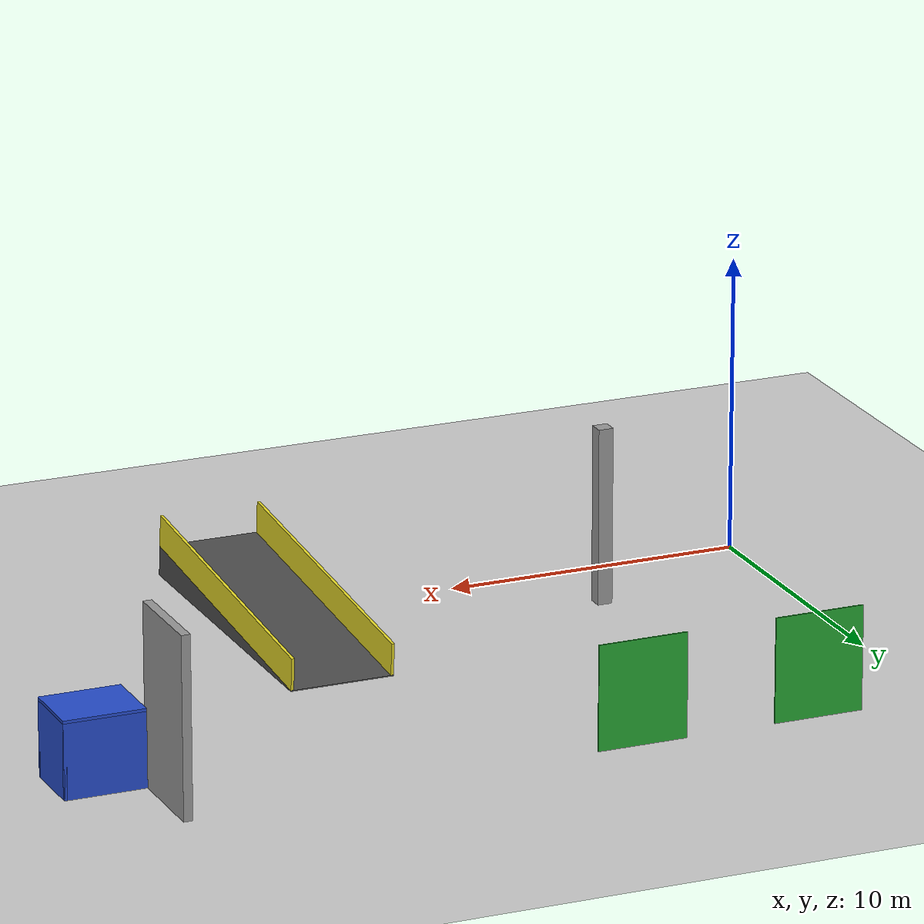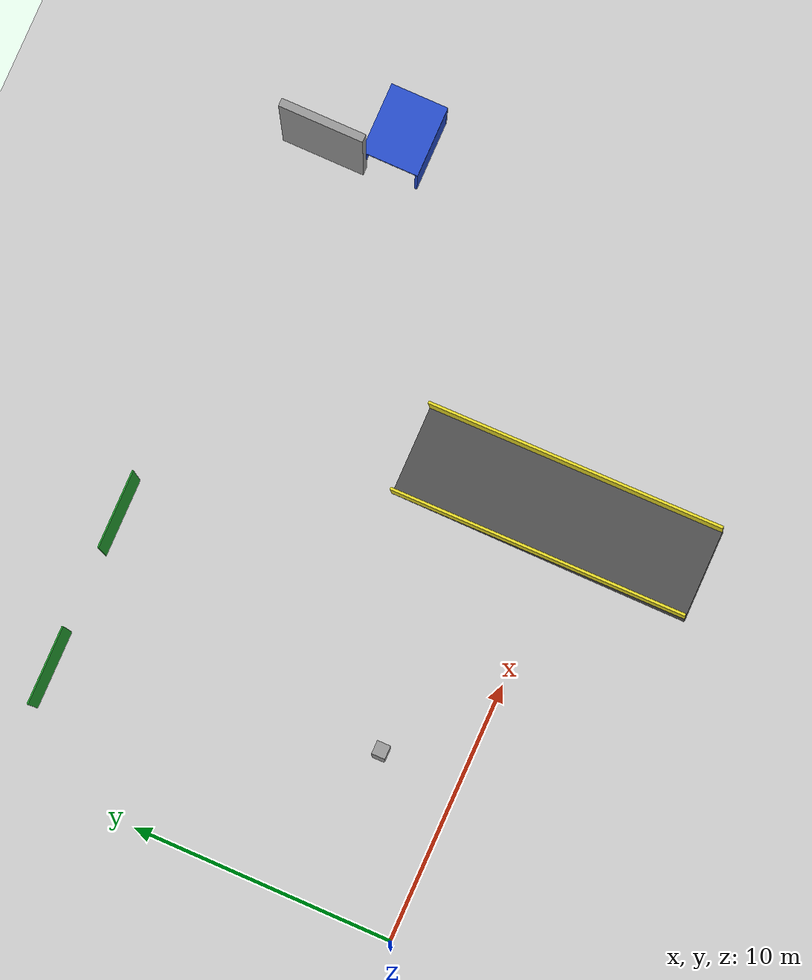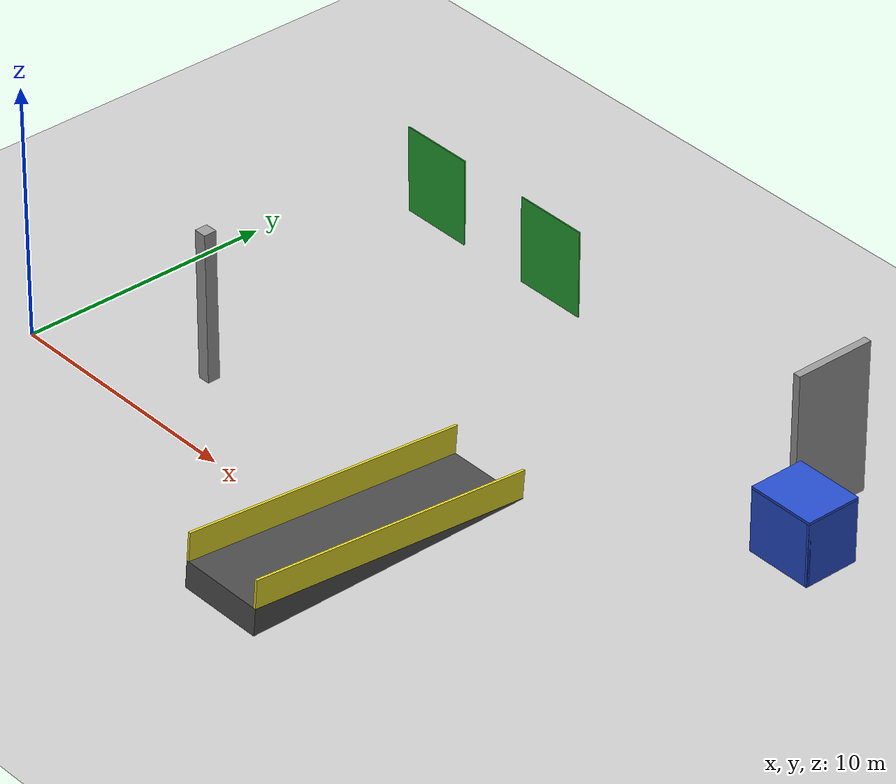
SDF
<sdf version="1.6">
 <world name="default">
  <include><uri>model://ground_plane</uri></include>
  <include><uri>model://sun</uri></include>
  <model name="mezz_ramp">
   <static>true</static>
   <pose>16.5000 0.6584 -0.1475 -0.087266 0.000000 0.000000</pose>
   <link name="link">
    <collision name="c"><geometry><box><size>3.5000 11.4737 1.3000</size></box></geometry></collision>
    <visual name="v">
     <geometry><box><size>3.5000 11.4737 1.3000</size></box></geometry>
     <material>
      <script><uri>file://media/materials/scripts/gazebo.material</uri><name>Gazebo/DarkGrey</name></script>
     </material>
    </visual>
   </link>
  </model>
  <model name="mezz_ramp_rail_w">
   <static>true</static>
   <pose>14.8000 0.7630 1.0479 -0.087266 0.000000 0.000000</pose>
   <link name="link">
    <collision name="c"><geometry><box><size>0.1000 11.4737 1.1000</size></box></geometry></collision>
    <visual name="v">
     <geometry><box><size>0.1000 11.4737 1.1000</size></box></geometry>
     <material>
      <script><uri>file://media/materials/scripts/gazebo.material</uri><name>Gazebo/Yellow</name></script>
     </material>
    </visual>
   </link>
  </model>
  <model name="mezz_ramp_rail_e">
   <static>true</static>
   <pose>18.2000 0.7630 1.0479 -0.087266 0.000000 0.000000</pose>
   <link name="link">
    <collision name="c"><geometry><box><size>0.1000 11.4737 1.1000</size></box></geometry></collision>
    <visual name="v">
     <geometry><box><size>0.1000 11.4737 1.1000</size></box></geometry>
     <material>
      <script><uri>file://media/materials/scripts/gazebo.material</uri><name>Gazebo/Yellow</name></script>
     </material>
    </visual>
   </link>
  </model>
  <model name="wall_e_1">
   <static>true</static>
   <pose>25.1500 13.7000 3.0000 0.000000 0.000000 0.000000</pose>
   <link name="link">
    <collision name="c"><geometry><box><size>0.3000 3.2000 6.0000</size></box></geometry></collision>
    <visual name="v">
     <geometry><box><size>0.3000 3.2000 6.0000</size></box></geometry>
     <material>
      <script><uri>file://media/materials/scripts/gazebo.material</uri><name>Gazebo/Grey</name></script>
     </material>
    </visual>
   </link>
  </model>
  <model name="door_S1">
   <static>true</static>
   <pose>4.0000 14.9700 1.7500 0.000000 0.000000 0.000000</pose>
   <link name="link">
    <visual name="v">
     <geometry><box><size>3.0000 0.0500 3.5000</size></box></geometry>
     <material>
      <script><uri>file://media/materials/scripts/gazebo.material</uri><name>Gazebo/Green</name></script>
     </material>
    </visual>
   </link>
  </model>
  <model name="door_S2">
   <static>true</static>
   <pose>10.0000 14.9700 1.7500 0.000000 0.000000 0.000000</pose>
   <link name="link">
    <visual name="v">
     <geometry><box><size>3.0000 0.0500 3.5000</size></box></geometry>
     <material>
      <script><uri>file://media/materials/scripts/gazebo.material</uri><name>Gazebo/Green</name></script>
     </material>
    </visual>
   </link>
  </model>
  <model name="elevator_back">
   <static>true</static>
   <pose>27.9500 11.2000 1.2500 0.000000 0.000000 0.000000</pose>
   <link name="link">
    <collision name="c"><geometry><box><size>0.1000 2.2000 2.5000</size></box></geometry></collision>
    <visual name="v">
     <geometry><box><size>0.1000 2.2000 2.5000</size></box></geometry>
     <material>
      <script><uri>file://media/materials/scripts/gazebo.material</uri><name>Gazebo/Blue</name></script>
     </material>
    </visual>
   </link>
  </model>
  <model name="elevator_side_n">
   <static>true</static>
   <pose>26.6500 12.2500 1.2500 0.000000 0.000000 0.000000</pose>
   <link name="link">
    <collision name="c"><geometry><box><size>2.7000 0.1000 2.5000</size></box></geometry></collision>
    <visual name="v">
     <geometry><box><size>2.7000 0.1000 2.5000</size></box></geometry>
     <material>
      <script><uri>file://media/materials/scripts/gazebo.material</uri><name>Gazebo/Blue</name></script>
     </material>
    </visual>
   </link>
  </model>
  <model name="elevator_side_s">
   <static>true</static>
   <pose>26.6500 10.1500 1.2500 0.000000 0.000000 0.000000</pose>
   <link name="link">
    <collision name="c"><geometry><box><size>2.7000 0.1000 2.5000</size></box></geometry></collision>
    <visual name="v">
     <geometry><box><size>2.7000 0.1000 2.5000</size></box></geometry>
     <material>
      <script><uri>file://media/materials/scripts/gazebo.material</uri><name>Gazebo/Blue</name></script>
     </material>
    </visual>
   </link>
  </model>
  <model name="elevator_roof">
   <static>true</static>
   <pose>26.6500 11.2000 2.5500 0.000000 0.000000 0.000000</pose>
   <link name="link">
    <collision name="c"><geometry><box><size>2.7000 2.2000 0.1000</size></box></geometry></collision>
    <visual name="v">
     <geometry><box><size>2.7000 2.2000 0.1000</size></box></geometry>
     <material>
      <script><uri>file://media/materials/scripts/gazebo.material</uri><name>Gazebo/Blue</name></script>
     </material>
    </visual>
   </link>
  </model>
  <model name="pillar_0">
   <static>true</static>
   <pose>6.0000 3.0000 3.0000 0.000000 0.000000 0.000000</pose>
   <link name="link">
    <collision name="c"><geometry><box><size>0.5000 0.5000 6.0000</size></box></geometry></collision>
    <visual name="v">
     <geometry><box><size>0.5000 0.5000 6.0000</size></box></geometry>
     <material>
      <script><uri>file://media/materials/scripts/gazebo.material</uri><name>Gazebo/Grey</name></script>
     </material>
    </visual>
   </link>
  </model>
 </world>
</sdf>
